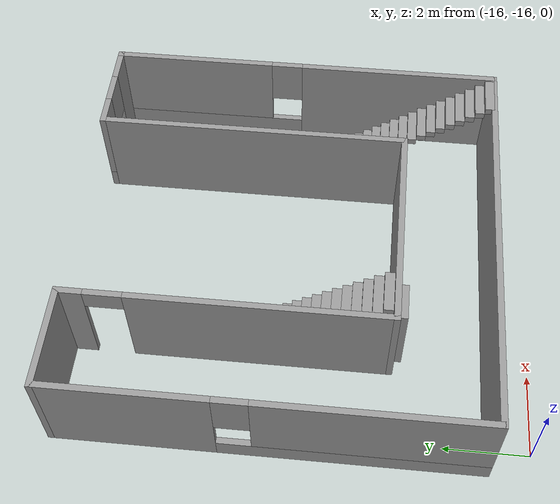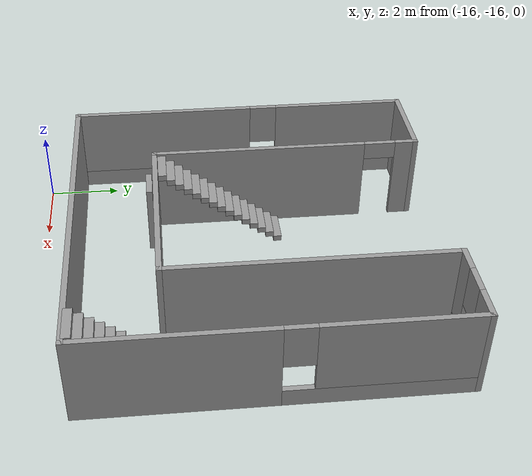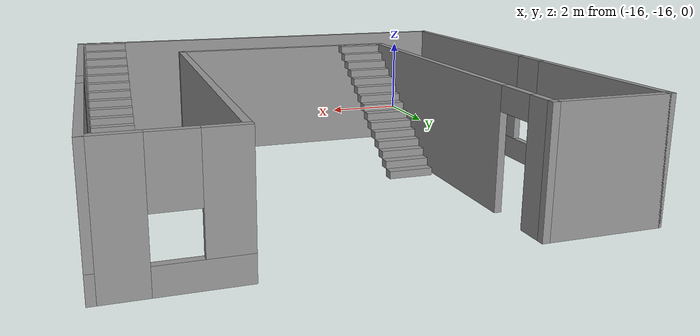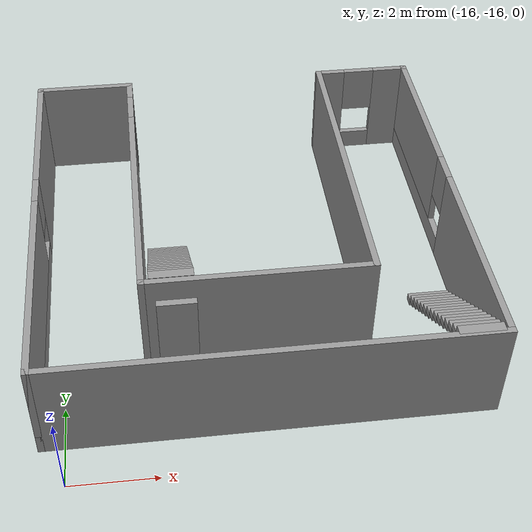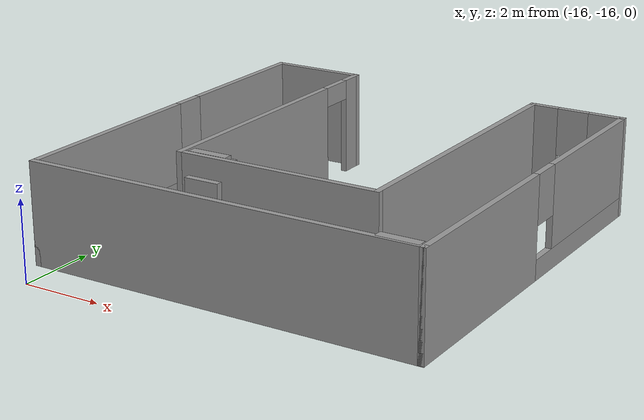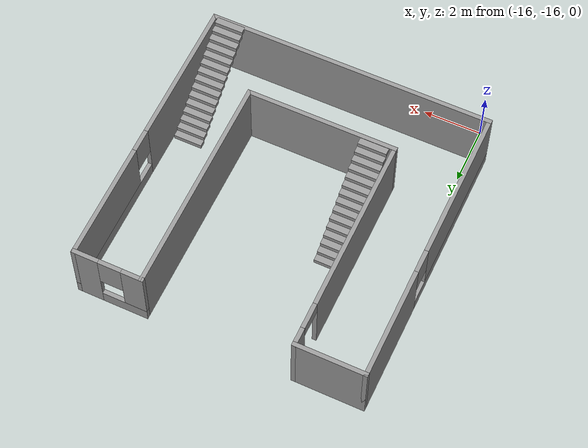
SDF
<?xml version='1.0'?>
<sdf version='1.6'>
  <model name='mybuildingWithStairsWindowsDoors'>
    <pose frame=''>-11.5733 -10.0576 0 0 -0 0</pose>
    <link name='Door_2'>
      <collision name='Door_2_Collision'>
        <geometry>
          <box>
            <size>0.9 0.17 2</size>
          </box>
        </geometry>
        <pose frame=''>0 0 1 0 -0 0</pose>
      </collision>
      <visual name='Door_2_Visual'>
        <pose frame=''>0 0 1 0 -0 0</pose>
        <geometry>
          <box>
            <size>0.9 0.17 2</size>
          </box>
        </geometry>
        <material>
          <script>
            <uri>file://media/materials/scripts/gazebo.material</uri>
            <name>Gazebo/Grey</name>
          </script>
        </material>
      </visual>
      <pose frame=''>-1.8349 -2.864 0 0 -0 0</pose>
    </link>
    <link name='Stairs_0'>
      <visual name='Stairs_0_Visual_0'>
        <pose frame=''>-1.91272 0.79263 0.083333 0 -0 0</pose>
        <geometry>
          <box>
            <size>1 0.233333 0.166667</size>
          </box>
        </geometry>
        <material>
          <script>
            <uri>file://media/materials/scripts/gazebo.material</uri>
            <name>Gazebo/Grey</name>
          </script>
          <ambient>1 1 1 1</ambient>
        </material>
        <meta>
          <layer>0</layer>
        </meta>
      </visual>
      <collision name='Stairs_0_Collision_0'>
        <geometry>
          <box>
            <size>1 0.233333 0.166667</size>
          </box>
        </geometry>
        <pose frame=''>-1.91272 0.79263 0.083333 0 -0 0</pose>
      </collision>
      <visual name='Stairs_0_Visual_1'>
        <pose frame=''>-1.91272 0.559297 0.25 0 -0 0</pose>
        <geometry>
          <box>
            <size>1 0.233333 0.166667</size>
          </box>
        </geometry>
        <material>
          <script>
            <uri>file://media/materials/scripts/gazebo.material</uri>
            <name>Gazebo/Grey</name>
          </script>
          <ambient>1 1 1 1</ambient>
        </material>
        <meta>
          <layer>0</layer>
        </meta>
      </visual>
      <collision name='Stairs_0_Collision_1'>
        <geometry>
          <box>
            <size>1 0.233333 0.166667</size>
          </box>
        </geometry>
        <pose frame=''>-1.91272 0.559297 0.25 0 -0 0</pose>
      </collision>
      <visual name='Stairs_0_Visual_2'>
        <pose frame=''>-1.91272 0.325964 0.416667 0 -0 0</pose>
        <geometry>
          <box>
            <size>1 0.233333 0.166667</size>
          </box>
        </geometry>
        <material>
          <script>
            <uri>file://media/materials/scripts/gazebo.material</uri>
            <name>Gazebo/Grey</name>
          </script>
          <ambient>1 1 1 1</ambient>
        </material>
        <meta>
          <layer>0</layer>
        </meta>
      </visual>
      <collision name='Stairs_0_Collision_2'>
        <geometry>
          <box>
            <size>1 0.233333 0.166667</size>
          </box>
        </geometry>
        <pose frame=''>-1.91272 0.325964 0.416667 0 -0 0</pose>
      </collision>
      <visual name='Stairs_0_Visual_3'>
        <pose frame=''>-1.91272 0.092631 0.583333 0 -0 0</pose>
        <geometry>
          <box>
            <size>1 0.233333 0.166667</size>
          </box>
        </geometry>
        <material>
          <script>
            <uri>file://media/materials/scripts/gazebo.material</uri>
            <name>Gazebo/Grey</name>
          </script>
          <ambient>1 1 1 1</ambient>
        </material>
        <meta>
          <layer>0</layer>
        </meta>
      </visual>
      <collision name='Stairs_0_Collision_3'>
        <geometry>
          <box>
            <size>1 0.233333 0.166667</size>
          </box>
        </geometry>
        <pose frame=''>-1.91272 0.092631 0.583333 0 -0 0</pose>
      </collision>
      <visual name='Stairs_0_Visual_4'>
        <pose frame=''>-1.91272 -0.140703 0.75 0 -0 0</pose>
        <geometry>
          <box>
            <size>1 0.233333 0.166667</size>
          </box>
        </geometry>
        <material>
          <script>
            <uri>file://media/materials/scripts/gazebo.material</uri>
            <name>Gazebo/Grey</name>
          </script>
          <ambient>1 1 1 1</ambient>
        </material>
        <meta>
          <layer>0</layer>
        </meta>
      </visual>
      <collision name='Stairs_0_Collision_4'>
        <geometry>
          <box>
            <size>1 0.233333 0.166667</size>
          </box>
        </geometry>
        <pose frame=''>-1.91272 -0.140703 0.75 0 -0 0</pose>
      </collision>
      <visual name='Stairs_0_Visual_5'>
        <pose frame=''>-1.91272 -0.374036 0.916667 0 -0 0</pose>
        <geometry>
          <box>
            <size>1 0.233333 0.166667</size>
          </box>
        </geometry>
        <material>
          <script>
            <uri>file://media/materials/scripts/gazebo.material</uri>
            <name>Gazebo/Grey</name>
          </script>
          <ambient>1 1 1 1</ambient>
        </material>
        <meta>
          <layer>0</layer>
        </meta>
      </visual>
      <collision name='Stairs_0_Collision_5'>
        <geometry>
          <box>
            <size>1 0.233333 0.166667</size>
          </box>
        </geometry>
        <pose frame=''>-1.91272 -0.374036 0.916667 0 -0 0</pose>
      </collision>
      <visual name='Stairs_0_Visual_6'>
        <pose frame=''>-1.91272 -0.607369 1.08333 0 -0 0</pose>
        <geometry>
          <box>
            <size>1 0.233333 0.166667</size>
          </box>
        </geometry>
        <material>
          <script>
            <uri>file://media/materials/scripts/gazebo.material</uri>
            <name>Gazebo/Grey</name>
          </script>
          <ambient>1 1 1 1</ambient>
        </material>
        <meta>
          <layer>0</layer>
        </meta>
      </visual>
      <collision name='Stairs_0_Collision_6'>
        <geometry>
          <box>
            <size>1 0.233333 0.166667</size>
          </box>
        </geometry>
        <pose frame=''>-1.91272 -0.607369 1.08333 0 -0 0</pose>
      </collision>
      <visual name='Stairs_0_Visual_7'>
        <pose frame=''>-1.91272 -0.840703 1.25 0 -0 0</pose>
        <geometry>
          <box>
            <size>1 0.233333 0.166667</size>
          </box>
        </geometry>
        <material>
          <script>
            <uri>file://media/materials/scripts/gazebo.material</uri>
            <name>Gazebo/Grey</name>
          </script>
          <ambient>1 1 1 1</ambient>
        </material>
        <meta>
          <layer>0</layer>
        </meta>
      </visual>
      <collision name='Stairs_0_Collision_7'>
        <geometry>
          <box>
            <size>1 0.233333 0.166667</size>
          </box>
        </geometry>
        <pose frame=''>-1.91272 -0.840703 1.25 0 -0 0</pose>
      </collision>
      <visual name='Stairs_0_Visual_8'>
        <pose frame=''>-1.91272 -1.07404 1.41667 0 -0 0</pose>
        <geometry>
          <box>
            <size>1 0.233333 0.166667</size>
          </box>
        </geometry>
        <material>
          <script>
            <uri>file://media/materials/scripts/gazebo.material</uri>
            <name>Gazebo/Grey</name>
          </script>
          <ambient>1 1 1 1</ambient>
        </material>
        <meta>
          <layer>0</layer>
        </meta>
      </visual>
      <collision name='Stairs_0_Collision_8'>
        <geometry>
          <box>
            <size>1 0.233333 0.166667</size>
          </box>
        </geometry>
        <pose frame=''>-1.91272 -1.07404 1.41667 0 -0 0</pose>
      </collision>
      <visual name='Stairs_0_Visual_9'>
        <pose frame=''>-1.91272 -1.30737 1.58333 0 -0 0</pose>
        <geometry>
          <box>
            <size>1 0.233333 0.166667</size>
          </box>
        </geometry>
        <material>
          <script>
            <uri>file://media/materials/scripts/gazebo.material</uri>
            <name>Gazebo/Grey</name>
          </script>
          <ambient>1 1 1 1</ambient>
        </material>
        <meta>
          <layer>0</layer>
        </meta>
      </visual>
      <collision name='Stairs_0_Collision_9'>
        <geometry>
          <box>
            <size>1 0.233333 0.166667</size>
          </box>
        </geometry>
        <pose frame=''>-1.91272 -1.30737 1.58333 0 -0 0</pose>
      </collision>
      <visual name='Stairs_0_Visual_10'>
        <pose frame=''>-1.91272 -1.5407 1.75 0 -0 0</pose>
        <geometry>
          <box>
            <size>1 0.233333 0.166667</size>
          </box>
        </geometry>
        <material>
          <script>
            <uri>file://media/materials/scripts/gazebo.material</uri>
            <name>Gazebo/Grey</name>
          </script>
          <ambient>1 1 1 1</ambient>
        </material>
        <meta>
          <layer>0</layer>
        </meta>
      </visual>
      <collision name='Stairs_0_Collision_10'>
        <geometry>
          <box>
            <size>1 0.233333 0.166667</size>
          </box>
        </geometry>
        <pose frame=''>-1.91272 -1.5407 1.75 0 -0 0</pose>
      </collision>
      <visual name='Stairs_0_Visual_11'>
        <pose frame=''>-1.91272 -1.77404 1.91667 0 -0 0</pose>
        <geometry>
          <box>
            <size>1 0.233333 0.166667</size>
          </box>
        </geometry>
        <material>
          <script>
            <uri>file://media/materials/scripts/gazebo.material</uri>
            <name>Gazebo/Grey</name>
          </script>
          <ambient>1 1 1 1</ambient>
        </material>
        <meta>
          <layer>0</layer>
        </meta>
      </visual>
      <collision name='Stairs_0_Collision_11'>
        <geometry>
          <box>
            <size>1 0.233333 0.166667</size>
          </box>
        </geometry>
        <pose frame=''>-1.91272 -1.77404 1.91667 0 -0 0</pose>
      </collision>
      <visual name='Stairs_0_Visual_12'>
        <pose frame=''>-1.91272 -2.00737 2.08333 0 -0 0</pose>
        <geometry>
          <box>
            <size>1 0.233333 0.166667</size>
          </box>
        </geometry>
        <material>
          <script>
            <uri>file://media/materials/scripts/gazebo.material</uri>
            <name>Gazebo/Grey</name>
          </script>
          <ambient>1 1 1 1</ambient>
        </material>
        <meta>
          <layer>0</layer>
        </meta>
      </visual>
      <collision name='Stairs_0_Collision_12'>
        <geometry>
          <box>
            <size>1 0.233333 0.166667</size>
          </box>
        </geometry>
        <pose frame=''>-1.91272 -2.00737 2.08333 0 -0 0</pose>
      </collision>
      <visual name='Stairs_0_Visual_13'>
        <pose frame=''>-1.91272 -2.2407 2.25 0 -0 0</pose>
        <geometry>
          <box>
            <size>1 0.233333 0.166667</size>
          </box>
        </geometry>
        <material>
          <script>
            <uri>file://media/materials/scripts/gazebo.material</uri>
            <name>Gazebo/Grey</name>
          </script>
          <ambient>1 1 1 1</ambient>
        </material>
        <meta>
          <layer>0</layer>
        </meta>
      </visual>
      <collision name='Stairs_0_Collision_13'>
        <geometry>
          <box>
            <size>1 0.233333 0.166667</size>
          </box>
        </geometry>
        <pose frame=''>-1.91272 -2.2407 2.25 0 -0 0</pose>
      </collision>
      <visual name='Stairs_0_Visual_14'>
        <pose frame=''>-1.91272 -2.47404 2.41667 0 -0 0</pose>
        <geometry>
          <box>
            <size>1 0.233333 0.166667</size>
          </box>
        </geometry>
        <material>
          <script>
            <uri>file://media/materials/scripts/gazebo.material</uri>
            <name>Gazebo/Grey</name>
          </script>
          <ambient>1 1 1 1</ambient>
        </material>
        <meta>
          <layer>0</layer>
        </meta>
      </visual>
      <collision name='Stairs_0_Collision_14'>
        <geometry>
          <box>
            <size>1 0.233333 0.166667</size>
          </box>
        </geometry>
        <pose frame=''>-1.91272 -2.47404 2.41667 0 -0 0</pose>
      </collision>
    </link>
    <link name='Stairs_1'>
      <visual name='Stairs_1_Visual_0'>
        <pose frame=''>4.31279 -1.54194 0.083333 0 -0 0</pose>
        <geometry>
          <box>
            <size>1 0.233333 0.166667</size>
          </box>
        </geometry>
        <material>
          <script>
            <uri>file://media/materials/scripts/gazebo.material</uri>
            <name>Gazebo/Grey</name>
          </script>
          <ambient>1 1 1 1</ambient>
        </material>
        <meta>
          <layer>0</layer>
        </meta>
      </visual>
      <collision name='Stairs_1_Collision_0'>
        <geometry>
          <box>
            <size>1 0.233333 0.166667</size>
          </box>
        </geometry>
        <pose frame=''>4.31279 -1.54194 0.083333 0 -0 0</pose>
      </collision>
      <visual name='Stairs_1_Visual_1'>
        <pose frame=''>4.31279 -1.77527 0.25 0 -0 0</pose>
        <geometry>
          <box>
            <size>1 0.233333 0.166667</size>
          </box>
        </geometry>
        <material>
          <script>
            <uri>file://media/materials/scripts/gazebo.material</uri>
            <name>Gazebo/Grey</name>
          </script>
          <ambient>1 1 1 1</ambient>
        </material>
        <meta>
          <layer>0</layer>
        </meta>
      </visual>
      <collision name='Stairs_1_Collision_1'>
        <geometry>
          <box>
            <size>1 0.233333 0.166667</size>
          </box>
        </geometry>
        <pose frame=''>4.31279 -1.77527 0.25 0 -0 0</pose>
      </collision>
      <visual name='Stairs_1_Visual_2'>
        <pose frame=''>4.31279 -2.00861 0.416667 0 -0 0</pose>
        <geometry>
          <box>
            <size>1 0.233333 0.166667</size>
          </box>
        </geometry>
        <material>
          <script>
            <uri>file://media/materials/scripts/gazebo.material</uri>
            <name>Gazebo/Grey</name>
          </script>
          <ambient>1 1 1 1</ambient>
        </material>
        <meta>
          <layer>0</layer>
        </meta>
      </visual>
      <collision name='Stairs_1_Collision_2'>
        <geometry>
          <box>
            <size>1 0.233333 0.166667</size>
          </box>
        </geometry>
        <pose frame=''>4.31279 -2.00861 0.416667 0 -0 0</pose>
      </collision>
      <visual name='Stairs_1_Visual_3'>
        <pose frame=''>4.31279 -2.24194 0.583333 0 -0 0</pose>
        <geometry>
          <box>
            <size>1 0.233333 0.166667</size>
          </box>
        </geometry>
        <material>
          <script>
            <uri>file://media/materials/scripts/gazebo.material</uri>
            <name>Gazebo/Grey</name>
          </script>
          <ambient>1 1 1 1</ambient>
        </material>
        <meta>
          <layer>0</layer>
        </meta>
      </visual>
      <collision name='Stairs_1_Collision_3'>
        <geometry>
          <box>
            <size>1 0.233333 0.166667</size>
          </box>
        </geometry>
        <pose frame=''>4.31279 -2.24194 0.583333 0 -0 0</pose>
      </collision>
      <visual name='Stairs_1_Visual_4'>
        <pose frame=''>4.31279 -2.47527 0.75 0 -0 0</pose>
        <geometry>
          <box>
            <size>1 0.233333 0.166667</size>
          </box>
        </geometry>
        <material>
          <script>
            <uri>file://media/materials/scripts/gazebo.material</uri>
            <name>Gazebo/Grey</name>
          </script>
          <ambient>1 1 1 1</ambient>
        </material>
        <meta>
          <layer>0</layer>
        </meta>
      </visual>
      <collision name='Stairs_1_Collision_4'>
        <geometry>
          <box>
            <size>1 0.233333 0.166667</size>
          </box>
        </geometry>
        <pose frame=''>4.31279 -2.47527 0.75 0 -0 0</pose>
      </collision>
      <visual name='Stairs_1_Visual_5'>
        <pose frame=''>4.31279 -2.70861 0.916667 0 -0 0</pose>
        <geometry>
          <box>
            <size>1 0.233333 0.166667</size>
          </box>
        </geometry>
        <material>
          <script>
            <uri>file://media/materials/scripts/gazebo.material</uri>
            <name>Gazebo/Grey</name>
          </script>
          <ambient>1 1 1 1</ambient>
        </material>
        <meta>
          <layer>0</layer>
        </meta>
      </visual>
      <collision name='Stairs_1_Collision_5'>
        <geometry>
          <box>
            <size>1 0.233333 0.166667</size>
          </box>
        </geometry>
        <pose frame=''>4.31279 -2.70861 0.916667 0 -0 0</pose>
      </collision>
      <visual name='Stairs_1_Visual_6'>
        <pose frame=''>4.31279 -2.94194 1.08333 0 -0 0</pose>
        <geometry>
          <box>
            <size>1 0.233333 0.166667</size>
          </box>
        </geometry>
        <material>
          <script>
            <uri>file://media/materials/scripts/gazebo.material</uri>
            <name>Gazebo/Grey</name>
          </script>
          <ambient>1 1 1 1</ambient>
        </material>
        <meta>
          <layer>0</layer>
        </meta>
      </visual>
      <collision name='Stairs_1_Collision_6'>
        <geometry>
          <box>
            <size>1 0.233333 0.166667</size>
          </box>
        </geometry>
        <pose frame=''>4.31279 -2.94194 1.08333 0 -0 0</pose>
      </collision>
      <visual name='Stairs_1_Visual_7'>
        <pose frame=''>4.31279 -3.17527 1.25 0 -0 0</pose>
        <geometry>
          <box>
            <size>1 0.233333 0.166667</size>
          </box>
        </geometry>
        <material>
          <script>
            <uri>file://media/materials/scripts/gazebo.material</uri>
            <name>Gazebo/Grey</name>
          </script>
          <ambient>1 1 1 1</ambient>
        </material>
        <meta>
          <layer>0</layer>
        </meta>
      </visual>
      <collision name='Stairs_1_Collision_7'>
        <geometry>
          <box>
            <size>1 0.233333 0.166667</size>
          </box>
        </geometry>
        <pose frame=''>4.31279 -3.17527 1.25 0 -0 0</pose>
      </collision>
      <visual name='Stairs_1_Visual_8'>
        <pose frame=''>4.31279 -3.40861 1.41667 0 -0 0</pose>
        <geometry>
          <box>
            <size>1 0.233333 0.166667</size>
          </box>
        </geometry>
        <material>
          <script>
            <uri>file://media/materials/scripts/gazebo.material</uri>
            <name>Gazebo/Grey</name>
          </script>
          <ambient>1 1 1 1</ambient>
        </material>
        <meta>
          <layer>0</layer>
        </meta>
      </visual>
      <collision name='Stairs_1_Collision_8'>
        <geometry>
          <box>
            <size>1 0.233333 0.166667</size>
          </box>
        </geometry>
        <pose frame=''>4.31279 -3.40861 1.41667 0 -0 0</pose>
      </collision>
      <visual name='Stairs_1_Visual_9'>
        <pose frame=''>4.31279 -3.64194 1.58333 0 -0 0</pose>
        <geometry>
          <box>
            <size>1 0.233333 0.166667</size>
          </box>
        </geometry>
        <material>
          <script>
            <uri>file://media/materials/scripts/gazebo.material</uri>
            <name>Gazebo/Grey</name>
          </script>
          <ambient>1 1 1 1</ambient>
        </material>
        <meta>
          <layer>0</layer>
        </meta>
      </visual>
      <collision name='Stairs_1_Collision_9'>
        <geometry>
          <box>
            <size>1 0.233333 0.166667</size>
          </box>
        </geometry>
        <pose frame=''>4.31279 -3.64194 1.58333 0 -0 0</pose>
      </collision>
      <visual name='Stairs_1_Visual_10'>
        <pose frame=''>4.31279 -3.87527 1.75 0 -0 0</pose>
        <geometry>
          <box>
            <size>1 0.233333 0.166667</size>
          </box>
        </geometry>
        <material>
          <script>
            <uri>file://media/materials/scripts/gazebo.material</uri>
            <name>Gazebo/Grey</name>
          </script>
          <ambient>1 1 1 1</ambient>
        </material>
        <meta>
          <layer>0</layer>
        </meta>
      </visual>
      <collision name='Stairs_1_Collision_10'>
        <geometry>
          <box>
            <size>1 0.233333 0.166667</size>
          </box>
        </geometry>
        <pose frame=''>4.31279 -3.87527 1.75 0 -0 0</pose>
      </collision>
      <visual name='Stairs_1_Visual_11'>
        <pose frame=''>4.31279 -4.1086 1.91667 0 -0 0</pose>
        <geometry>
          <box>
            <size>1 0.233333 0.166667</size>
          </box>
        </geometry>
        <material>
          <script>
            <uri>file://media/materials/scripts/gazebo.material</uri>
            <name>Gazebo/Grey</name>
          </script>
          <ambient>1 1 1 1</ambient>
        </material>
        <meta>
          <layer>0</layer>
        </meta>
      </visual>
      <collision name='Stairs_1_Collision_11'>
        <geometry>
          <box>
            <size>1 0.233333 0.166667</size>
          </box>
        </geometry>
        <pose frame=''>4.31279 -4.1086 1.91667 0 -0 0</pose>
      </collision>
      <visual name='Stairs_1_Visual_12'>
        <pose frame=''>4.31279 -4.34194 2.08333 0 -0 0</pose>
        <geometry>
          <box>
            <size>1 0.233333 0.166667</size>
          </box>
        </geometry>
        <material>
          <script>
            <uri>file://media/materials/scripts/gazebo.material</uri>
            <name>Gazebo/Grey</name>
          </script>
          <ambient>1 1 1 1</ambient>
        </material>
        <meta>
          <layer>0</layer>
        </meta>
      </visual>
      <collision name='Stairs_1_Collision_12'>
        <geometry>
          <box>
            <size>1 0.233333 0.166667</size>
          </box>
        </geometry>
        <pose frame=''>4.31279 -4.34194 2.08333 0 -0 0</pose>
      </collision>
      <visual name='Stairs_1_Visual_13'>
        <pose frame=''>4.31279 -4.57527 2.25 0 -0 0</pose>
        <geometry>
          <box>
            <size>1 0.233333 0.166667</size>
          </box>
        </geometry>
        <material>
          <script>
            <uri>file://media/materials/scripts/gazebo.material</uri>
            <name>Gazebo/Grey</name>
          </script>
          <ambient>1 1 1 1</ambient>
        </material>
        <meta>
          <layer>0</layer>
        </meta>
      </visual>
      <collision name='Stairs_1_Collision_13'>
        <geometry>
          <box>
            <size>1 0.233333 0.166667</size>
          </box>
        </geometry>
        <pose frame=''>4.31279 -4.57527 2.25 0 -0 0</pose>
      </collision>
      <visual name='Stairs_1_Visual_14'>
        <pose frame=''>4.31279 -4.80861 2.41667 0 -0 0</pose>
        <geometry>
          <box>
            <size>1 0.233333 0.166667</size>
          </box>
        </geometry>
        <material>
          <script>
            <uri>file://media/materials/scripts/gazebo.material</uri>
            <name>Gazebo/Grey</name>
          </script>
          <ambient>1 1 1 1</ambient>
        </material>
        <meta>
          <layer>0</layer>
        </meta>
      </visual>
      <collision name='Stairs_1_Collision_14'>
        <geometry>
          <box>
            <size>1 0.233333 0.166667</size>
          </box>
        </geometry>
        <pose frame=''>4.31279 -4.80861 2.41667 0 -0 0</pose>
      </collision>
    </link>
    <link name='Wall_29'>
      <collision name='Wall_29_Collision'>
        <geometry>
          <box>
            <size>2.5 0.15 2.5</size>
          </box>
        </geometry>
        <pose frame=''>0 0 1.25 0 -0 0</pose>
      </collision>
      <visual name='Wall_29_Visual'>
        <pose frame=''>0 0 1.25 0 -0 0</pose>
        <geometry>
          <box>
            <size>2.5 0.15 2.5</size>
          </box>
        </geometry>
        <material>
          <script>
            <uri>file://media/materials/scripts/gazebo.material</uri>
            <name>Gazebo/Grey</name>
          </script>
          <ambient>1 1 1 1</ambient>
        </material>
        <meta>
          <layer>0</layer>
        </meta>
      </visual>
      <pose frame=''>-3.75 4.925 0 0 -0 0</pose>
    </link>
    <link name='Wall_33'>
      <pose frame=''>-4.925 0 0 0 0 -1.5708</pose>
      <visual name='Wall_33_Visual_0'>
        <pose frame=''>-3.05784 0 1.25 0 -0 0</pose>
        <geometry>
          <box>
            <size>3.88432 0.15 2.5</size>
          </box>
        </geometry>
        <material>
          <script>
            <uri>file://media/materials/scripts/gazebo.material</uri>
            <name>Gazebo/Grey</name>
          </script>
          <ambient>1 1 1 1</ambient>
        </material>
        <meta>
          <layer>0</layer>
        </meta>
      </visual>
      <collision name='Wall_33_Collision_0'>
        <geometry>
          <box>
            <size>3.88432 0.15 2.5</size>
          </box>
        </geometry>
        <pose frame=''>-3.05784 0 1.25 0 -0 0</pose>
      </collision>
      <visual name='Wall_33_Visual_1'>
        <pose frame=''>1.94216 0 0.25 0 -0 0</pose>
        <geometry>
          <box>
            <size>6.11568 0.15 0.5</size>
          </box>
        </geometry>
        <material>
          <script>
            <uri>file://media/materials/scripts/gazebo.material</uri>
            <name>Gazebo/Grey</name>
          </script>
          <ambient>1 1 1 1</ambient>
        </material>
        <meta>
          <layer>0</layer>
        </meta>
      </visual>
      <collision name='Wall_33_Collision_1'>
        <geometry>
          <box>
            <size>6.11568 0.15 0.5</size>
          </box>
        </geometry>
        <pose frame=''>1.94216 0 0.25 0 -0 0</pose>
      </collision>
      <visual name='Wall_33_Visual_2'>
        <pose frame=''>2.34216 0 1.5 0 -0 0</pose>
        <geometry>
          <box>
            <size>5.31568 0.15 2</size>
          </box>
        </geometry>
        <material>
          <script>
            <uri>file://media/materials/scripts/gazebo.material</uri>
            <name>Gazebo/Grey</name>
          </script>
          <ambient>1 1 1 1</ambient>
        </material>
        <meta>
          <layer>0</layer>
        </meta>
      </visual>
      <collision name='Wall_33_Collision_2'>
        <geometry>
          <box>
            <size>5.31568 0.15 2</size>
          </box>
        </geometry>
        <pose frame=''>2.34216 0 1.5 0 -0 0</pose>
      </collision>
      <visual name='Wall_33_Visual_3'>
        <pose frame=''>-0.715676 0 1.9 0 -0 0</pose>
        <geometry>
          <box>
            <size>0.8 0.15 1.2</size>
          </box>
        </geometry>
        <material>
          <script>
            <uri>file://media/materials/scripts/gazebo.material</uri>
            <name>Gazebo/Grey</name>
          </script>
          <ambient>1 1 1 1</ambient>
        </material>
        <meta>
          <layer>0</layer>
        </meta>
      </visual>
      <collision name='Wall_33_Collision_3'>
        <geometry>
          <box>
            <size>0.8 0.15 1.2</size>
          </box>
        </geometry>
        <pose frame=''>-0.715676 0 1.9 0 -0 0</pose>
      </collision>
    </link>
    <link name='Wall_34'>
      <collision name='Wall_34_Collision'>
        <geometry>
          <box>
            <size>10 0.15 2.5</size>
          </box>
        </geometry>
        <pose frame=''>0 0 1.25 0 -0 0</pose>
      </collision>
      <visual name='Wall_34_Visual'>
        <pose frame=''>0 0 1.25 0 -0 0</pose>
        <geometry>
          <box>
            <size>10 0.15 2.5</size>
          </box>
        </geometry>
        <material>
          <script>
            <uri>file://media/materials/scripts/gazebo.material</uri>
            <name>Gazebo/Grey</name>
          </script>
          <ambient>1 1 1 1</ambient>
        </material>
        <meta>
          <layer>0</layer>
        </meta>
      </visual>
      <pose frame=''>0 -4.925 0 0 -0 0</pose>
    </link>
    <link name='Wall_35'>
      <pose frame=''>4.925 0 0 0 -0 1.5708</pose>
      <visual name='Wall_35_Visual_0'>
        <pose frame=''>-2.45889 0 1.25 0 -0 0</pose>
        <geometry>
          <box>
            <size>5.08222 0.15 2.5</size>
          </box>
        </geometry>
        <material>
          <script>
            <uri>file://media/materials/scripts/gazebo.material</uri>
            <name>Gazebo/Grey</name>
          </script>
          <ambient>1 1 1 1</ambient>
        </material>
        <meta>
          <layer>0</layer>
        </meta>
      </visual>
      <collision name='Wall_35_Collision_0'>
        <geometry>
          <box>
            <size>5.08222 0.15 2.5</size>
          </box>
        </geometry>
        <pose frame=''>-2.45889 0 1.25 0 -0 0</pose>
      </collision>
      <visual name='Wall_35_Visual_1'>
        <pose frame=''>2.54111 0 0.25 0 -0 0</pose>
        <geometry>
          <box>
            <size>4.91778 0.15 0.5</size>
          </box>
        </geometry>
        <material>
          <script>
            <uri>file://media/materials/scripts/gazebo.material</uri>
            <name>Gazebo/Grey</name>
          </script>
          <ambient>1 1 1 1</ambient>
        </material>
        <meta>
          <layer>0</layer>
        </meta>
      </visual>
      <collision name='Wall_35_Collision_1'>
        <geometry>
          <box>
            <size>4.91778 0.15 0.5</size>
          </box>
        </geometry>
        <pose frame=''>2.54111 0 0.25 0 -0 0</pose>
      </collision>
      <visual name='Wall_35_Visual_2'>
        <pose frame=''>2.94111 0 1.5 0 -0 0</pose>
        <geometry>
          <box>
            <size>4.11778 0.15 2</size>
          </box>
        </geometry>
        <material>
          <script>
            <uri>file://media/materials/scripts/gazebo.material</uri>
            <name>Gazebo/Grey</name>
          </script>
          <ambient>1 1 1 1</ambient>
        </material>
        <meta>
          <layer>0</layer>
        </meta>
      </visual>
      <collision name='Wall_35_Collision_2'>
        <geometry>
          <box>
            <size>4.11778 0.15 2</size>
          </box>
        </geometry>
        <pose frame=''>2.94111 0 1.5 0 -0 0</pose>
      </collision>
      <visual name='Wall_35_Visual_3'>
        <pose frame=''>0.48222 0 1.9 0 -0 0</pose>
        <geometry>
          <box>
            <size>0.8 0.15 1.2</size>
          </box>
        </geometry>
        <material>
          <script>
            <uri>file://media/materials/scripts/gazebo.material</uri>
            <name>Gazebo/Grey</name>
          </script>
          <ambient>1 1 1 1</ambient>
        </material>
        <meta>
          <layer>0</layer>
        </meta>
      </visual>
      <collision name='Wall_35_Collision_3'>
        <geometry>
          <box>
            <size>0.8 0.15 1.2</size>
          </box>
        </geometry>
        <pose frame=''>0.48222 0 1.9 0 -0 0</pose>
      </collision>
    </link>
    <link name='Wall_36'>
      <pose frame=''>3.75 4.925 0 0 -0 3.14159</pose>
      <visual name='Wall_36_Visual_0'>
        <pose frame=''>-0.785905 0 1.25 0 -0 0</pose>
        <geometry>
          <box>
            <size>0.928191 0.15 2.5</size>
          </box>
        </geometry>
        <material>
          <script>
            <uri>file://media/materials/scripts/gazebo.material</uri>
            <name>Gazebo/Grey</name>
          </script>
          <ambient>1 1 1 1</ambient>
        </material>
        <meta>
          <layer>0</layer>
        </meta>
      </visual>
      <collision name='Wall_36_Collision_0'>
        <geometry>
          <box>
            <size>0.928191 0.15 2.5</size>
          </box>
        </geometry>
        <pose frame=''>-0.785905 0 1.25 0 -0 0</pose>
      </collision>
      <visual name='Wall_36_Visual_1'>
        <pose frame=''>0.464095 0 0.25 0 -0 0</pose>
        <geometry>
          <box>
            <size>1.57181 0.15 0.5</size>
          </box>
        </geometry>
        <material>
          <script>
            <uri>file://media/materials/scripts/gazebo.material</uri>
            <name>Gazebo/Grey</name>
          </script>
          <ambient>1 1 1 1</ambient>
        </material>
        <meta>
          <layer>0</layer>
        </meta>
      </visual>
      <collision name='Wall_36_Collision_1'>
        <geometry>
          <box>
            <size>1.57181 0.15 0.5</size>
          </box>
        </geometry>
        <pose frame=''>0.464095 0 0.25 0 -0 0</pose>
      </collision>
      <visual name='Wall_36_Visual_2'>
        <pose frame=''>0.864095 0 1.5 0 -0 0</pose>
        <geometry>
          <box>
            <size>0.771809 0.15 2</size>
          </box>
        </geometry>
        <material>
          <script>
            <uri>file://media/materials/scripts/gazebo.material</uri>
            <name>Gazebo/Grey</name>
          </script>
          <ambient>1 1 1 1</ambient>
        </material>
        <meta>
          <layer>0</layer>
        </meta>
      </visual>
      <collision name='Wall_36_Collision_2'>
        <geometry>
          <box>
            <size>0.771809 0.15 2</size>
          </box>
        </geometry>
        <pose frame=''>0.864095 0 1.5 0 -0 0</pose>
      </collision>
      <visual name='Wall_36_Visual_3'>
        <pose frame=''>0.078191 0 1.9 0 -0 0</pose>
        <geometry>
          <box>
            <size>0.8 0.15 1.2</size>
          </box>
        </geometry>
        <material>
          <script>
            <uri>file://media/materials/scripts/gazebo.material</uri>
            <name>Gazebo/Grey</name>
          </script>
          <ambient>1 1 1 1</ambient>
        </material>
        <meta>
          <layer>0</layer>
        </meta>
      </visual>
      <collision name='Wall_36_Collision_3'>
        <geometry>
          <box>
            <size>0.8 0.15 1.2</size>
          </box>
        </geometry>
        <pose frame=''>0.078191 0 1.9 0 -0 0</pose>
      </collision>
    </link>
    <link name='Wall_37'>
      <collision name='Wall_37_Collision'>
        <geometry>
          <box>
            <size>7.75 0.15 2.5</size>
          </box>
        </geometry>
        <pose frame=''>0 0 1.25 0 -0 0</pose>
      </collision>
      <visual name='Wall_37_Visual'>
        <pose frame=''>0 0 1.25 0 -0 0</pose>
        <geometry>
          <box>
            <size>7.75 0.15 2.5</size>
          </box>
        </geometry>
        <material>
          <script>
            <uri>file://media/materials/scripts/gazebo.material</uri>
            <name>Gazebo/Grey</name>
          </script>
          <ambient>1 1 1 1</ambient>
        </material>
        <meta>
          <layer>0</layer>
        </meta>
      </visual>
      <pose frame=''>2.575 1.125 0 0 0 -1.5708</pose>
    </link>
    <link name='Wall_38'>
      <collision name='Wall_38_Collision'>
        <geometry>
          <box>
            <size>5.3 0.15 2.5</size>
          </box>
        </geometry>
        <pose frame=''>0 0 1.25 0 -0 0</pose>
      </collision>
      <visual name='Wall_38_Visual'>
        <pose frame=''>0 0 1.25 0 -0 0</pose>
        <geometry>
          <box>
            <size>5.3 0.15 2.5</size>
          </box>
        </geometry>
        <material>
          <script>
            <uri>file://media/materials/scripts/gazebo.material</uri>
            <name>Gazebo/Grey</name>
          </script>
          <ambient>1 1 1 1</ambient>
        </material>
        <meta>
          <layer>0</layer>
        </meta>
      </visual>
      <pose frame=''>0 -2.675 0 0 -0 3.14159</pose>
    </link>
    <link name='Wall_39'>
      <pose frame=''>-2.575 1.125 0 0 -0 1.5708</pose>
      <visual name='Wall_39_Visual_0'>
        <pose frame=''>-0.785453 0 1.25 0 -0 0</pose>
        <geometry>
          <box>
            <size>6.17909 0.15 2.5</size>
          </box>
        </geometry>
        <material>
          <script>
            <uri>file://media/materials/scripts/gazebo.material</uri>
            <name>Gazebo/Grey</name>
          </script>
          <ambient>1 1 1 1</ambient>
        </material>
        <meta>
          <layer>0</layer>
        </meta>
      </visual>
      <collision name='Wall_39_Collision_0'>
        <geometry>
          <box>
            <size>6.17909 0.15 2.5</size>
          </box>
        </geometry>
        <pose frame=''>-0.785453 0 1.25 0 -0 0</pose>
      </collision>
      <visual name='Wall_39_Visual_1'>
        <pose frame=''>3.53955 0 1.25 0 -0 0</pose>
        <geometry>
          <box>
            <size>0.670906 0.15 2.5</size>
          </box>
        </geometry>
        <material>
          <script>
            <uri>file://media/materials/scripts/gazebo.material</uri>
            <name>Gazebo/Grey</name>
          </script>
          <ambient>1 1 1 1</ambient>
        </material>
        <meta>
          <layer>0</layer>
        </meta>
      </visual>
      <collision name='Wall_39_Collision_1'>
        <geometry>
          <box>
            <size>0.670906 0.15 2.5</size>
          </box>
        </geometry>
        <pose frame=''>3.53955 0 1.25 0 -0 0</pose>
      </collision>
      <visual name='Wall_39_Visual_2'>
        <pose frame=''>2.75409 0 2.25 0 -0 0</pose>
        <geometry>
          <box>
            <size>0.9 0.15 0.5</size>
          </box>
        </geometry>
        <material>
          <script>
            <uri>file://media/materials/scripts/gazebo.material</uri>
            <name>Gazebo/Grey</name>
          </script>
          <ambient>1 1 1 1</ambient>
        </material>
        <meta>
          <layer>0</layer>
        </meta>
      </visual>
      <collision name='Wall_39_Collision_2'>
        <geometry>
          <box>
            <size>0.9 0.15 0.5</size>
          </box>
        </geometry>
        <pose frame=''>2.75409 0 2.25 0 -0 0</pose>
      </collision>
    </link>
    <static>1</static>
  </model>
</sdf>
